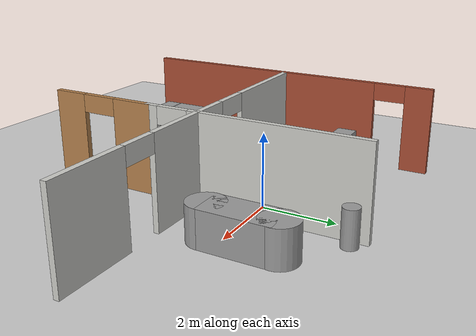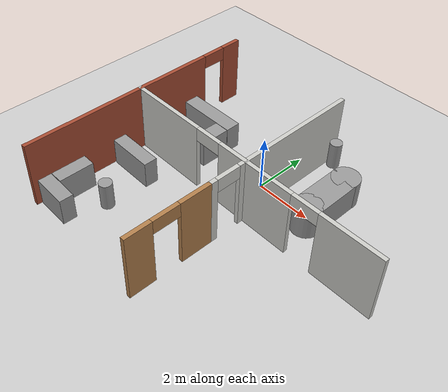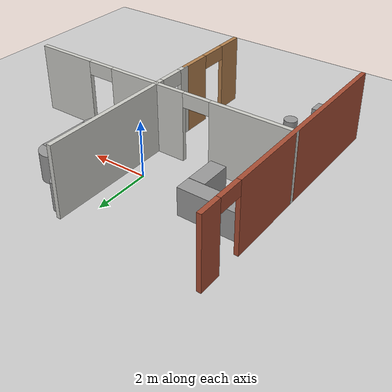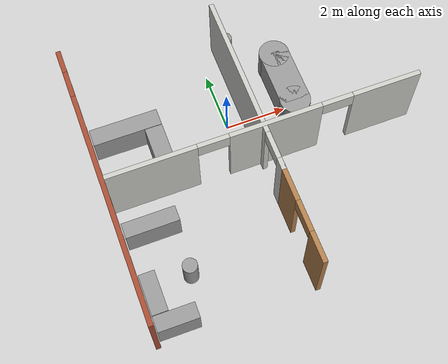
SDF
<sdf version="1.6">
 <world name="default">
  <model name="ground_plane">
   <static>1</static>
   <link name="link">
    <collision name="collision">
     <geometry><plane><normal>0 0 1</normal><size>100 100</size></plane></geometry>
     <surface><friction><ode><mu>100</mu><mu2>50</mu2></ode></friction></surface>
    </collision>
    <visual name="visual">
     <cast_shadows>0</cast_shadows>
     <geometry><plane><normal>0 0 1</normal><size>100 100</size></plane></geometry>
     <material>
      <script><uri>file://media/materials/scripts/gazebo.material</uri><name>Gazebo/Grey</name></script>
     </material>
    </visual>
   </link>
  </model>
  <model name="building">
   <link name="Wall_17">
    <pose>-2.5 -3 0 0 0 -1.5708</pose>
    <visual name="Wall_17_Visual_0">
     <pose>-0.986122 0 1.25 0 -0 0</pose>
     <geometry><box><size>1.17776 0.15 2.5</size></box></geometry>
     <material>
      <script><uri>file://media/materials/scripts/gazebo.material</uri><name>Gazebo/Wood</name></script>
      <ambient>0.435294 0.796078 0.67451 1</ambient>
      <shader type="pixel"/>
      <diffuse>1 1 1 1</diffuse>
      <specular>0.2 0.2 0.2 1</specular>
      <emissive>0 0 0 1</emissive>
     </material>
     <meta><layer>0</layer></meta>
    </visual>
    <visual name="Wall_17_Visual_2">
     <pose>0.102756 0 2.25 0 -0 0</pose>
     <geometry><box><size>1 0.15 0.5</size></box></geometry>
     <material>
      <script><uri>file://media/materials/scripts/gazebo.material</uri><name>Gazebo/Wood</name></script>
      <ambient>0.435294 0.796078 0.67451 1</ambient>
      <shader type="pixel"/>
      <diffuse>1 1 1 1</diffuse>
      <specular>0.2 0.2 0.2 1</specular>
      <emissive>0 0 0 1</emissive>
     </material>
     <meta><layer>0</layer></meta>
    </visual>
    <visual name="Wall_17_Visual_1">
     <pose>1.08888 0 1.25 0 -0 0</pose>
     <geometry><box><size>0.972244 0.15 2.5</size></box></geometry>
     <material>
      <script><uri>file://media/materials/scripts/gazebo.material</uri><name>Gazebo/Wood</name></script>
      <ambient>0.435294 0.796078 0.67451 1</ambient>
      <shader type="pixel"/>
      <diffuse>1 1 1 1</diffuse>
      <specular>0.2 0.2 0.2 1</specular>
      <emissive>0 0 0 1</emissive>
     </material>
     <meta><layer>0</layer></meta>
    </visual>
    <collision name="Wall_17_Collision_2">
     <pose>0.102756 0 2.25 0 -0 0</pose>
     <geometry><box><size>1 0.15 0.5</size></box></geometry>
     <surface>
      <friction>
       <ode><mu>1</mu><mu2>1</mu2><fdir1>0 0 0</fdir1><slip1>0</slip1><slip2>0</slip2></ode>
       <torsional>
        <coefficient>1</coefficient>
        <patch_radius>0</patch_radius>
        <surface_radius>0</surface_radius>
        <use_patch_radius>1</use_patch_radius>
        <ode><slip>0</slip></ode>
       </torsional>
      </friction>
      <bounce><restitution_coefficient>0</restitution_coefficient><threshold>1e+06</threshold></bounce>
      <contact>
       <collide_without_contact>0</collide_without_contact>
       <collide_without_contact_bitmask>1</collide_without_contact_bitmask>
       <collide_bitmask>1</collide_bitmask>
       <ode>
        <soft_cfm>0</soft_cfm>
        <soft_erp>0.2</soft_erp>
        <kp>1e+13</kp>
        <kd>1</kd>
        <max_vel>0.01</max_vel>
        <min_depth>0</min_depth>
       </ode>
       <bullet>
        <split_impulse>1</split_impulse>
        <split_impulse_penetration_threshold>-0.01</split_impulse_penetration_threshold>
        <soft_cfm>0</soft_cfm>
        <soft_erp>0.2</soft_erp>
        <kp>1e+13</kp>
        <kd>1</kd>
       </bullet>
      </contact>
     </surface>
    </collision>
    <collision name="Wall_17_Collision_0">
     <pose>-0.986122 0 1.25 0 -0 0</pose>
     <geometry><box><size>1.17776 0.15 2.5</size></box></geometry>
     <surface>
      <friction>
       <ode><mu>1</mu><mu2>1</mu2><fdir1>0 0 0</fdir1><slip1>0</slip1><slip2>0</slip2></ode>
       <torsional>
        <coefficient>1</coefficient>
        <patch_radius>0</patch_radius>
        <surface_radius>0</surface_radius>
        <use_patch_radius>1</use_patch_radius>
        <ode><slip>0</slip></ode>
       </torsional>
      </friction>
      <bounce><restitution_coefficient>0</restitution_coefficient><threshold>1e+06</threshold></bounce>
      <contact>
       <collide_without_contact>0</collide_without_contact>
       <collide_without_contact_bitmask>1</collide_without_contact_bitmask>
       <collide_bitmask>1</collide_bitmask>
       <ode>
        <soft_cfm>0</soft_cfm>
        <soft_erp>0.2</soft_erp>
        <kp>1e+13</kp>
        <kd>1</kd>
        <max_vel>0.01</max_vel>
        <min_depth>0</min_depth>
       </ode>
       <bullet>
        <split_impulse>1</split_impulse>
        <split_impulse_penetration_threshold>-0.01</split_impulse_penetration_threshold>
        <soft_cfm>0</soft_cfm>
        <soft_erp>0.2</soft_erp>
        <kp>1e+13</kp>
        <kd>1</kd>
       </bullet>
      </contact>
     </surface>
    </collision>
    <collision name="Wall_17_Collision_1">
     <pose>1.08888 0 1.25 0 -0 0</pose>
     <geometry><box><size>0.972244 0.15 2.5</size></box></geometry>
     <surface>
      <friction>
       <ode><mu>1</mu><mu2>1</mu2><fdir1>0 0 0</fdir1><slip1>0</slip1><slip2>0</slip2></ode>
       <torsional>
        <coefficient>1</coefficient>
        <patch_radius>0</patch_radius>
        <surface_radius>0</surface_radius>
        <use_patch_radius>1</use_patch_radius>
        <ode><slip>0</slip></ode>
       </torsional>
      </friction>
      <bounce><restitution_coefficient>0</restitution_coefficient><threshold>1e+06</threshold></bounce>
      <contact>
       <collide_without_contact>0</collide_without_contact>
       <collide_without_contact_bitmask>1</collide_without_contact_bitmask>
       <collide_bitmask>1</collide_bitmask>
       <ode>
        <soft_cfm>0</soft_cfm>
        <soft_erp>0.2</soft_erp>
        <kp>1e+13</kp>
        <kd>1</kd>
        <max_vel>0.01</max_vel>
        <min_depth>0</min_depth>
       </ode>
       <bullet>
        <split_impulse>1</split_impulse>
        <split_impulse_penetration_threshold>-0.01</split_impulse_penetration_threshold>
        <soft_cfm>0</soft_cfm>
        <soft_erp>0.2</soft_erp>
        <kp>1e+13</kp>
        <kd>1</kd>
       </bullet>
      </contact>
     </surface>
    </collision>
   </link>
   <link name="Wall_19">
    <pose>-2.5 0 0 0 -0 0</pose>
    <visual name="Wall_19_Visual_1">
     <pose>0.383063 0 1.25 0 -0 0</pose>
     <geometry><box><size>2.95551 0.15 2.5</size></box></geometry>
     <material>
      <script><uri>file://media/materials/scripts/gazebo.material</uri><name>Gazebo/CeilingTiled</name></script>
      <ambient>1 0.764706 0.305882 1</ambient>
      <shader type="pixel"/>
      <diffuse>1 1 1 1</diffuse>
      <specular>0 0 0 1</specular>
      <emissive>0 0 0 1</emissive>
     </material>
     <meta><layer>0</layer></meta>
    </visual>
    <visual name="Wall_19_Visual_2">
     <pose>3.96791 0 1.25 0 -0 0</pose>
     <geometry><box><size>2.21418 0.15 2.5</size></box></geometry>
     <material>
      <script><uri>file://media/materials/scripts/gazebo.material</uri><name>Gazebo/CeilingTiled</name></script>
      <ambient>1 0.764706 0.305882 1</ambient>
      <shader type="pixel"/>
      <diffuse>1 1 1 1</diffuse>
      <specular>0 0 0 1</specular>
      <emissive>0 0 0 1</emissive>
     </material>
     <meta><layer>0</layer></meta>
    </visual>
    <visual name="Wall_19_Visual_0">
     <pose>-3.58485 0 1.25 0 -0 0</pose>
     <geometry><box><size>2.98031 0.15 2.5</size></box></geometry>
     <material>
      <script><uri>file://media/materials/scripts/gazebo.material</uri><name>Gazebo/CeilingTiled</name></script>
      <ambient>1 0.764706 0.305882 1</ambient>
      <shader type="pixel"/>
      <diffuse>1 1 1 1</diffuse>
      <specular>0 0 0 1</specular>
      <emissive>0 0 0 1</emissive>
     </material>
     <meta><layer>0</layer></meta>
    </visual>
    <visual name="Wall_19_Visual_4">
     <pose>2.36082 0 2.25 0 -0 0</pose>
     <geometry><box><size>1 0.15 0.5</size></box></geometry>
     <material>
      <script><uri>file://media/materials/scripts/gazebo.material</uri><name>Gazebo/CeilingTiled</name></script>
      <ambient>1 0.764706 0.305882 1</ambient>
      <shader type="pixel"/>
      <diffuse>1 1 1 1</diffuse>
      <specular>0 0 0 1</specular>
      <emissive>0 0 0 1</emissive>
     </material>
     <meta><layer>0</layer></meta>
    </visual>
    <visual name="Wall_19_Visual_3">
     <pose>-1.59469 0 2.25 0 -0 0</pose>
     <geometry><box><size>1 0.15 0.5</size></box></geometry>
     <material>
      <script><uri>file://media/materials/scripts/gazebo.material</uri><name>Gazebo/CeilingTiled</name></script>
      <ambient>1 0.764706 0.305882 1</ambient>
      <shader type="pixel"/>
      <diffuse>1 1 1 1</diffuse>
      <specular>0 0 0 1</specular>
      <emissive>0 0 0 1</emissive>
     </material>
     <meta><layer>0</layer></meta>
    </visual>
    <collision name="Wall_19_Collision_0">
     <pose>-3.58485 0 1.25 0 -0 0</pose>
     <geometry><box><size>2.98031 0.15 2.5</size></box></geometry>
     <surface>
      <friction>
       <ode><mu>1</mu><mu2>1</mu2><fdir1>0 0 0</fdir1><slip1>0</slip1><slip2>0</slip2></ode>
       <torsional>
        <coefficient>1</coefficient>
        <patch_radius>0</patch_radius>
        <surface_radius>0</surface_radius>
        <use_patch_radius>1</use_patch_radius>
        <ode><slip>0</slip></ode>
       </torsional>
      </friction>
      <bounce><restitution_coefficient>0</restitution_coefficient><threshold>1e+06</threshold></bounce>
      <contact>
       <collide_without_contact>0</collide_without_contact>
       <collide_without_contact_bitmask>1</collide_without_contact_bitmask>
       <collide_bitmask>1</collide_bitmask>
       <ode>
        <soft_cfm>0</soft_cfm>
        <soft_erp>0.2</soft_erp>
        <kp>1e+13</kp>
        <kd>1</kd>
        <max_vel>0.01</max_vel>
        <min_depth>0</min_depth>
       </ode>
       <bullet>
        <split_impulse>1</split_impulse>
        <split_impulse_penetration_threshold>-0.01</split_impulse_penetration_threshold>
        <soft_cfm>0</soft_cfm>
        <soft_erp>0.2</soft_erp>
        <kp>1e+13</kp>
        <kd>1</kd>
       </bullet>
      </contact>
     </surface>
    </collision>
    <collision name="Wall_19_Collision_2">
     <pose>3.96791 0 1.25 0 -0 0</pose>
     <geometry><box><size>2.21418 0.15 2.5</size></box></geometry>
     <surface>
      <friction>
       <ode><mu>1</mu><mu2>1</mu2><fdir1>0 0 0</fdir1><slip1>0</slip1><slip2>0</slip2></ode>
       <torsional>
        <coefficient>1</coefficient>
        <patch_radius>0</patch_radius>
        <surface_radius>0</surface_radius>
        <use_patch_radius>1</use_patch_radius>
        <ode><slip>0</slip></ode>
       </torsional>
      </friction>
      <bounce><restitution_coefficient>0</restitution_coefficient><threshold>1e+06</threshold></bounce>
      <contact>
       <collide_without_contact>0</collide_without_contact>
       <collide_without_contact_bitmask>1</collide_without_contact_bitmask>
       <collide_bitmask>1</collide_bitmask>
       <ode>
        <soft_cfm>0</soft_cfm>
        <soft_erp>0.2</soft_erp>
        <kp>1e+13</kp>
        <kd>1</kd>
        <max_vel>0.01</max_vel>
        <min_depth>0</min_depth>
       </ode>
       <bullet>
        <split_impulse>1</split_impulse>
        <split_impulse_penetration_threshold>-0.01</split_impulse_penetration_threshold>
        <soft_cfm>0</soft_cfm>
        <soft_erp>0.2</soft_erp>
        <kp>1e+13</kp>
        <kd>1</kd>
       </bullet>
      </contact>
     </surface>
    </collision>
    <collision name="Wall_19_Collision_1">
     <pose>0.383063 0 1.25 0 -0 0</pose>
     <geometry><box><size>2.95551 0.15 2.5</size></box></geometry>
     <surface>
      <friction>
       <ode><mu>1</mu><mu2>1</mu2><fdir1>0 0 0</fdir1><slip1>0</slip1><slip2>0</slip2></ode>
       <torsional>
        <coefficient>1</coefficient>
        <patch_radius>0</patch_radius>
        <surface_radius>0</surface_radius>
        <use_patch_radius>1</use_patch_radius>
        <ode><slip>0</slip></ode>
       </torsional>
      </friction>
      <bounce><restitution_coefficient>0</restitution_coefficient><threshold>1e+06</threshold></bounce>
      <contact>
       <collide_without_contact>0</collide_without_contact>
       <collide_without_contact_bitmask>1</collide_without_contact_bitmask>
       <collide_bitmask>1</collide_bitmask>
       <ode>
        <soft_cfm>0</soft_cfm>
        <soft_erp>0.2</soft_erp>
        <kp>1e+13</kp>
        <kd>1</kd>
        <max_vel>0.01</max_vel>
        <min_depth>0</min_depth>
       </ode>
       <bullet>
        <split_impulse>1</split_impulse>
        <split_impulse_penetration_threshold>-0.01</split_impulse_penetration_threshold>
        <soft_cfm>0</soft_cfm>
        <soft_erp>0.2</soft_erp>
        <kp>1e+13</kp>
        <kd>1</kd>
       </bullet>
      </contact>
     </surface>
    </collision>
    <collision name="Wall_19_Collision_3">
     <pose>-1.59469 0 2.25 0 -0 0</pose>
     <geometry><box><size>1 0.15 0.5</size></box></geometry>
     <surface>
      <friction>
       <ode><mu>1</mu><mu2>1</mu2><fdir1>0 0 0</fdir1><slip1>0</slip1><slip2>0</slip2></ode>
       <torsional>
        <coefficient>1</coefficient>
        <patch_radius>0</patch_radius>
        <surface_radius>0</surface_radius>
        <use_patch_radius>1</use_patch_radius>
        <ode><slip>0</slip></ode>
       </torsional>
      </friction>
      <bounce><restitution_coefficient>0</restitution_coefficient><threshold>1e+06</threshold></bounce>
      <contact>
       <collide_without_contact>0</collide_without_contact>
       <collide_without_contact_bitmask>1</collide_without_contact_bitmask>
       <collide_bitmask>1</collide_bitmask>
       <ode>
        <soft_cfm>0</soft_cfm>
        <soft_erp>0.2</soft_erp>
        <kp>1e+13</kp>
        <kd>1</kd>
        <max_vel>0.01</max_vel>
        <min_depth>0</min_depth>
       </ode>
       <bullet>
        <split_impulse>1</split_impulse>
        <split_impulse_penetration_threshold>-0.01</split_impulse_penetration_threshold>
        <soft_cfm>0</soft_cfm>
        <soft_erp>0.2</soft_erp>
        <kp>1e+13</kp>
        <kd>1</kd>
       </bullet>
      </contact>
     </surface>
    </collision>
    <collision name="Wall_19_Collision_4">
     <pose>2.36082 0 2.25 0 -0 0</pose>
     <geometry><box><size>1 0.15 0.5</size></box></geometry>
     <surface>
      <friction>
       <ode><mu>1</mu><mu2>1</mu2><fdir1>0 0 0</fdir1><slip1>0</slip1><slip2>0</slip2></ode>
       <torsional>
        <coefficient>1</coefficient>
        <patch_radius>0</patch_radius>
        <surface_radius>0</surface_radius>
        <use_patch_radius>1</use_patch_radius>
        <ode><slip>0</slip></ode>
       </torsional>
      </friction>
      <bounce><restitution_coefficient>0</restitution_coefficient><threshold>1e+06</threshold></bounce>
      <contact>
       <collide_without_contact>0</collide_without_contact>
       <collide_without_contact_bitmask>1</collide_without_contact_bitmask>
       <collide_bitmask>1</collide_bitmask>
       <ode>
        <soft_cfm>0</soft_cfm>
        <soft_erp>0.2</soft_erp>
        <kp>1e+13</kp>
        <kd>1</kd>
        <max_vel>0.01</max_vel>
        <min_depth>0</min_depth>
       </ode>
       <bullet>
        <split_impulse>1</split_impulse>
        <split_impulse_penetration_threshold>-0.01</split_impulse_penetration_threshold>
        <soft_cfm>0</soft_cfm>
        <soft_erp>0.2</soft_erp>
        <kp>1e+13</kp>
        <kd>1</kd>
       </bullet>
      </contact>
     </surface>
    </collision>
   </link>
   <link name="Wall_22">
    <pose>-2.5 2.25 0 0 -0 1.5708</pose>
    <visual name="Wall_22_Visual">
     <pose>0 0 1.25 0 -0 0</pose>
     <geometry><box><size>4.65 0.15 2.5</size></box></geometry>
     <material>
      <script><uri>file://media/materials/scripts/gazebo.material</uri><name>Gazebo/CeilingTiled</name></script>
      <ambient>1 0.764706 0.305882 1</ambient>
      <shader type="pixel"/>
      <diffuse>1 1 1 1</diffuse>
      <specular>0 0 0 1</specular>
      <emissive>0 0 0 1</emissive>
     </material>
     <meta><layer>0</layer></meta>
    </visual>
    <collision name="Wall_22_Collision">
     <pose>0 0 1.25 0 -0 0</pose>
     <geometry><box><size>4.65 0.15 2.5</size></box></geometry>
     <surface>
      <friction>
       <ode><mu>1</mu><mu2>1</mu2><fdir1>0 0 0</fdir1><slip1>0</slip1><slip2>0</slip2></ode>
       <torsional>
        <coefficient>1</coefficient>
        <patch_radius>0</patch_radius>
        <surface_radius>0</surface_radius>
        <use_patch_radius>1</use_patch_radius>
        <ode><slip>0</slip></ode>
       </torsional>
      </friction>
      <bounce><restitution_coefficient>0</restitution_coefficient><threshold>1e+06</threshold></bounce>
      <contact>
       <collide_without_contact>0</collide_without_contact>
       <collide_without_contact_bitmask>1</collide_without_contact_bitmask>
       <collide_bitmask>1</collide_bitmask>
       <ode>
        <soft_cfm>0</soft_cfm>
        <soft_erp>0.2</soft_erp>
        <kp>1e+13</kp>
        <kd>1</kd>
        <max_vel>0.01</max_vel>
        <min_depth>0</min_depth>
       </ode>
       <bullet>
        <split_impulse>1</split_impulse>
        <split_impulse_penetration_threshold>-0.01</split_impulse_penetration_threshold>
        <soft_cfm>0</soft_cfm>
        <soft_erp>0.2</soft_erp>
        <kp>1e+13</kp>
        <kd>1</kd>
       </bullet>
      </contact>
     </surface>
    </collision>
   </link>
   <link name="Wall_28">
    <pose>-2.5 -0.75 0 0 0 -1.5708</pose>
    <visual name="Wall_28_Visual_1">
     <pose>0.628859 0 1.25 0 -0 0</pose>
     <geometry><box><size>0.392282 0.15 2.5</size></box></geometry>
     <material>
      <script><uri>file://media/materials/scripts/gazebo.material</uri><name>Gazebo/CeilingTiled</name></script>
      <ambient>1 0.764706 0.305882 1</ambient>
      <shader type="pixel"/>
      <diffuse>1 1 1 1</diffuse>
      <specular>0 0 0 1</specular>
      <emissive>0 0 0 1</emissive>
     </material>
     <meta><layer>0</layer></meta>
    </visual>
    <visual name="Wall_28_Visual_2">
     <pose>-0.017282 0 2.25 0 -0 0</pose>
     <geometry><box><size>0.9 0.15 0.5</size></box></geometry>
     <material>
      <script><uri>file://media/materials/scripts/gazebo.material</uri><name>Gazebo/CeilingTiled</name></script>
      <ambient>1 0.764706 0.305882 1</ambient>
      <shader type="pixel"/>
      <diffuse>1 1 1 1</diffuse>
      <specular>0 0 0 1</specular>
      <emissive>0 0 0 1</emissive>
     </material>
     <meta><layer>0</layer></meta>
    </visual>
    <visual name="Wall_28_Visual_0">
     <pose>-0.646141 0 1.25 0 -0 0</pose>
     <geometry><box><size>0.357718 0.15 2.5</size></box></geometry>
     <material>
      <script><uri>file://media/materials/scripts/gazebo.material</uri><name>Gazebo/CeilingTiled</name></script>
      <ambient>1 0.764706 0.305882 1</ambient>
      <shader type="pixel"/>
      <diffuse>1 1 1 1</diffuse>
      <specular>0 0 0 1</specular>
      <emissive>0 0 0 1</emissive>
     </material>
     <meta><layer>0</layer></meta>
    </visual>
    <collision name="Wall_28_Collision_0">
     <pose>-0.646141 0 1.25 0 -0 0</pose>
     <geometry><box><size>0.357718 0.15 2.5</size></box></geometry>
     <surface>
      <friction>
       <ode><mu>1</mu><mu2>1</mu2><fdir1>0 0 0</fdir1><slip1>0</slip1><slip2>0</slip2></ode>
       <torsional>
        <coefficient>1</coefficient>
        <patch_radius>0</patch_radius>
        <surface_radius>0</surface_radius>
        <use_patch_radius>1</use_patch_radius>
        <ode><slip>0</slip></ode>
       </torsional>
      </friction>
      <bounce><restitution_coefficient>0</restitution_coefficient><threshold>1e+06</threshold></bounce>
      <contact>
       <collide_without_contact>0</collide_without_contact>
       <collide_without_contact_bitmask>1</collide_without_contact_bitmask>
       <collide_bitmask>1</collide_bitmask>
       <ode>
        <soft_cfm>0</soft_cfm>
        <soft_erp>0.2</soft_erp>
        <kp>1e+13</kp>
        <kd>1</kd>
        <max_vel>0.01</max_vel>
        <min_depth>0</min_depth>
       </ode>
       <bullet>
        <split_impulse>1</split_impulse>
        <split_impulse_penetration_threshold>-0.01</split_impulse_penetration_threshold>
        <soft_cfm>0</soft_cfm>
        <soft_erp>0.2</soft_erp>
        <kp>1e+13</kp>
        <kd>1</kd>
       </bullet>
      </contact>
     </surface>
    </collision>
    <collision name="Wall_28_Collision_2">
     <pose>-0.017282 0 2.25 0 -0 0</pose>
     <geometry><box><size>0.9 0.15 0.5</size></box></geometry>
     <surface>
      <friction>
       <ode><mu>1</mu><mu2>1</mu2><fdir1>0 0 0</fdir1><slip1>0</slip1><slip2>0</slip2></ode>
       <torsional>
        <coefficient>1</coefficient>
        <patch_radius>0</patch_radius>
        <surface_radius>0</surface_radius>
        <use_patch_radius>1</use_patch_radius>
        <ode><slip>0</slip></ode>
       </torsional>
      </friction>
      <bounce><restitution_coefficient>0</restitution_coefficient><threshold>1e+06</threshold></bounce>
      <contact>
       <collide_without_contact>0</collide_without_contact>
       <collide_without_contact_bitmask>1</collide_without_contact_bitmask>
       <collide_bitmask>1</collide_bitmask>
       <ode>
        <soft_cfm>0</soft_cfm>
        <soft_erp>0.2</soft_erp>
        <kp>1e+13</kp>
        <kd>1</kd>
        <max_vel>0.01</max_vel>
        <min_depth>0</min_depth>
       </ode>
       <bullet>
        <split_impulse>1</split_impulse>
        <split_impulse_penetration_threshold>-0.01</split_impulse_penetration_threshold>
        <soft_cfm>0</soft_cfm>
        <soft_erp>0.2</soft_erp>
        <kp>1e+13</kp>
        <kd>1</kd>
       </bullet>
      </contact>
     </surface>
    </collision>
    <collision name="Wall_28_Collision_1">
     <pose>0.628859 0 1.25 0 -0 0</pose>
     <geometry><box><size>0.392282 0.15 2.5</size></box></geometry>
     <surface>
      <friction>
       <ode><mu>1</mu><mu2>1</mu2><fdir1>0 0 0</fdir1><slip1>0</slip1><slip2>0</slip2></ode>
       <torsional>
        <coefficient>1</coefficient>
        <patch_radius>0</patch_radius>
        <surface_radius>0</surface_radius>
        <use_patch_radius>1</use_patch_radius>
        <ode><slip>0</slip></ode>
       </torsional>
      </friction>
      <bounce><restitution_coefficient>0</restitution_coefficient><threshold>1e+06</threshold></bounce>
      <contact>
       <collide_without_contact>0</collide_without_contact>
       <collide_without_contact_bitmask>1</collide_without_contact_bitmask>
       <collide_bitmask>1</collide_bitmask>
       <ode>
        <soft_cfm>0</soft_cfm>
        <soft_erp>0.2</soft_erp>
        <kp>1e+13</kp>
        <kd>1</kd>
        <max_vel>0.01</max_vel>
        <min_depth>0</min_depth>
       </ode>
       <bullet>
        <split_impulse>1</split_impulse>
        <split_impulse_penetration_threshold>-0.01</split_impulse_penetration_threshold>
        <soft_cfm>0</soft_cfm>
        <soft_erp>0.2</soft_erp>
        <kp>1e+13</kp>
        <kd>1</kd>
       </bullet>
      </contact>
     </surface>
    </collision>
   </link>
   <link name="Wall_6">
    <pose>-7.5 0 0 0 0 -1.5708</pose>
    <visual name="Wall_6_Visual_0">
     <pose>-4.1811 0 1.25 0 -0 0</pose>
     <geometry><box><size>0.787791 0.15 2.5</size></box></geometry>
     <material>
      <script><uri>file://media/materials/scripts/gazebo.material</uri><name>Gazebo/Bricks</name></script>
      <ambient>0.996078 0.47451 0.0196078 1</ambient>
      <shader type="pixel"/>
      <diffuse>1 1 1 1</diffuse>
      <specular>0.2 0.2 0.2 1</specular>
      <emissive>0 0 0 1</emissive>
     </material>
     <meta><layer>0</layer></meta>
    </visual>
    <visual name="Wall_6_Visual_2">
     <pose>-3.33721 0 2.25 0 -0 0</pose>
     <geometry><box><size>0.9 0.15 0.5</size></box></geometry>
     <material>
      <script><uri>file://media/materials/scripts/gazebo.material</uri><name>Gazebo/Bricks</name></script>
      <ambient>0.996078 0.47451 0.0196078 1</ambient>
      <shader type="pixel"/>
      <diffuse>1 1 1 1</diffuse>
      <specular>0.2 0.2 0.2 1</specular>
      <emissive>0 0 0 1</emissive>
     </material>
     <meta><layer>0</layer></meta>
    </visual>
    <visual name="Wall_6_Visual_1">
     <pose>0.843896 0 1.25 0 -0 0</pose>
     <geometry><box><size>7.46221 0.15 2.5</size></box></geometry>
     <material>
      <script><uri>file://media/materials/scripts/gazebo.material</uri><name>Gazebo/Bricks</name></script>
      <ambient>0.996078 0.47451 0.0196078 1</ambient>
      <shader type="pixel"/>
      <diffuse>1 1 1 1</diffuse>
      <specular>0.2 0.2 0.2 1</specular>
      <emissive>0 0 0 1</emissive>
     </material>
     <meta><layer>0</layer></meta>
    </visual>
    <collision name="Wall_6_Collision_0">
     <pose>-4.1811 0 1.25 0 -0 0</pose>
     <geometry><box><size>0.787791 0.15 2.5</size></box></geometry>
     <surface>
      <friction>
       <ode><mu>1</mu><mu2>1</mu2><fdir1>0 0 0</fdir1><slip1>0</slip1><slip2>0</slip2></ode>
       <torsional>
        <coefficient>1</coefficient>
        <patch_radius>0</patch_radius>
        <surface_radius>0</surface_radius>
        <use_patch_radius>1</use_patch_radius>
        <ode><slip>0</slip></ode>
       </torsional>
      </friction>
      <bounce><restitution_coefficient>0</restitution_coefficient><threshold>1e+06</threshold></bounce>
      <contact>
       <collide_without_contact>0</collide_without_contact>
       <collide_without_contact_bitmask>1</collide_without_contact_bitmask>
       <collide_bitmask>1</collide_bitmask>
       <ode>
        <soft_cfm>0</soft_cfm>
        <soft_erp>0.2</soft_erp>
        <kp>1e+13</kp>
        <kd>1</kd>
        <max_vel>0.01</max_vel>
        <min_depth>0</min_depth>
       </ode>
       <bullet>
        <split_impulse>1</split_impulse>
        <split_impulse_penetration_threshold>-0.01</split_impulse_penetration_threshold>
        <soft_cfm>0</soft_cfm>
        <soft_erp>0.2</soft_erp>
        <kp>1e+13</kp>
        <kd>1</kd>
       </bullet>
      </contact>
     </surface>
    </collision>
    <collision name="Wall_6_Collision_1">
     <pose>0.843896 0 1.25 0 -0 0</pose>
     <geometry><box><size>7.46221 0.15 2.5</size></box></geometry>
     <surface>
      <friction>
       <ode><mu>1</mu><mu2>1</mu2><fdir1>0 0 0</fdir1><slip1>0</slip1><slip2>0</slip2></ode>
       <torsional>
        <coefficient>1</coefficient>
        <patch_radius>0</patch_radius>
        <surface_radius>0</surface_radius>
        <use_patch_radius>1</use_patch_radius>
        <ode><slip>0</slip></ode>
       </torsional>
      </friction>
      <bounce><restitution_coefficient>0</restitution_coefficient><threshold>1e+06</threshold></bounce>
      <contact>
       <collide_without_contact>0</collide_without_contact>
       <collide_without_contact_bitmask>1</collide_without_contact_bitmask>
       <collide_bitmask>1</collide_bitmask>
       <ode>
        <soft_cfm>0</soft_cfm>
        <soft_erp>0.2</soft_erp>
        <kp>1e+13</kp>
        <kd>1</kd>
        <max_vel>0.01</max_vel>
        <min_depth>0</min_depth>
       </ode>
       <bullet>
        <split_impulse>1</split_impulse>
        <split_impulse_penetration_threshold>-0.01</split_impulse_penetration_threshold>
        <soft_cfm>0</soft_cfm>
        <soft_erp>0.2</soft_erp>
        <kp>1e+13</kp>
        <kd>1</kd>
       </bullet>
      </contact>
     </surface>
    </collision>
    <collision name="Wall_6_Collision_2">
     <pose>-3.33721 0 2.25 0 -0 0</pose>
     <geometry><box><size>0.9 0.15 0.5</size></box></geometry>
     <surface>
      <friction>
       <ode><mu>1</mu><mu2>1</mu2><fdir1>0 0 0</fdir1><slip1>0</slip1><slip2>0</slip2></ode>
       <torsional>
        <coefficient>1</coefficient>
        <patch_radius>0</patch_radius>
        <surface_radius>0</surface_radius>
        <use_patch_radius>1</use_patch_radius>
        <ode><slip>0</slip></ode>
       </torsional>
      </friction>
      <bounce><restitution_coefficient>0</restitution_coefficient><threshold>1e+06</threshold></bounce>
      <contact>
       <collide_without_contact>0</collide_without_contact>
       <collide_without_contact_bitmask>1</collide_without_contact_bitmask>
       <collide_bitmask>1</collide_bitmask>
       <ode>
        <soft_cfm>0</soft_cfm>
        <soft_erp>0.2</soft_erp>
        <kp>1e+13</kp>
        <kd>1</kd>
        <max_vel>0.01</max_vel>
        <min_depth>0</min_depth>
       </ode>
       <bullet>
        <split_impulse>1</split_impulse>
        <split_impulse_penetration_threshold>-0.01</split_impulse_penetration_threshold>
        <soft_cfm>0</soft_cfm>
        <soft_erp>0.2</soft_erp>
        <kp>1e+13</kp>
        <kd>1</kd>
       </bullet>
      </contact>
     </surface>
    </collision>
   </link>
   <static>1</static>
   <pose>3.1187 -1.5263 0 0 -0 0</pose>
  </model>
  <model name="unit_box">
   <link name="link">
    <pose>-0.782407 -0.001887 0 0 -0 0</pose>
    <inertial>
     <mass>1.24814</mass>
     <inertia>
      <ixx>0.137103</ixx>
      <ixy>0</ixy>
      <ixz>0</ixz>
      <iyy>0.613366</iyy>
      <iyz>0</iyz>
      <izz>0.542445</izz>
     </inertia>
    </inertial>
    <visual name="visual">
     <geometry><box><size>2.21294 0.564047 1</size></box></geometry>
     <material>
      <script><name>Gazebo/Grey</name><uri>file://media/materials/scripts/gazebo.material</uri></script>
      <shader type="pixel"><normal_map>__default__</normal_map></shader>
      <ambient>0.3 0.3 0.3 1</ambient>
      <diffuse>0.7 0.7 0.7 1</diffuse>
      <specular>0.01 0.01 0.01 1</specular>
      <emissive>0 0 0 1</emissive>
     </material>
    </visual>
    <collision name="collision">
     <geometry><box><size>2.21294 0.564047 1</size></box></geometry>
     <surface>
      <friction>
       <ode><mu>1</mu><mu2>1</mu2><fdir1>0 0 0</fdir1><slip1>0</slip1><slip2>0</slip2></ode>
       <torsional>
        <coefficient>1</coefficient>
        <patch_radius>0</patch_radius>
        <surface_radius>0</surface_radius>
        <use_patch_radius>1</use_patch_radius>
        <ode><slip>0</slip></ode>
       </torsional>
      </friction>
      <bounce><restitution_coefficient>0</restitution_coefficient><threshold>1e+06</threshold></bounce>
      <contact>
       <collide_without_contact>0</collide_without_contact>
       <collide_without_contact_bitmask>1</collide_without_contact_bitmask>
       <collide_bitmask>1</collide_bitmask>
       <ode>
        <soft_cfm>0</soft_cfm>
        <soft_erp>0.2</soft_erp>
        <kp>1e+13</kp>
        <kd>1</kd>
        <max_vel>0.01</max_vel>
        <min_depth>0</min_depth>
       </ode>
       <bullet>
        <split_impulse>1</split_impulse>
        <split_impulse_penetration_threshold>-0.01</split_impulse_penetration_threshold>
        <soft_cfm>0</soft_cfm>
        <soft_erp>0.2</soft_erp>
        <kp>1e+13</kp>
        <kd>1</kd>
       </bullet>
      </contact>
     </surface>
    </collision>
   </link>
   <link name="link_clone">
    <pose>0.042396 -0.845064 0 -0 -0 -1.57291</pose>
    <inertial>
     <mass>0.620394</mass>
     <inertia>
      <ixx>0.0681477</ixx>
      <ixy>0</ixy>
      <ixz>0</ixz>
      <iyy>0.114251</iyy>
      <iyz>0</iyz>
      <izz>0.0790001</izz>
     </inertia>
    </inertial>
    <visual name="visual">
     <geometry><box><size>1.09996 0.564047 1</size></box></geometry>
     <material>
      <script><name>Gazebo/Grey</name><uri>file://media/materials/scripts/gazebo.material</uri></script>
      <shader type="pixel"><normal_map>__default__</normal_map></shader>
      <ambient>0.3 0.3 0.3 1</ambient>
      <diffuse>0.7 0.7 0.7 1</diffuse>
      <specular>0.01 0.01 0.01 1</specular>
      <emissive>0 0 0 1</emissive>
     </material>
    </visual>
    <collision name="collision">
     <geometry><box><size>1.09996 0.564047 1</size></box></geometry>
     <surface>
      <friction>
       <ode><mu>1</mu><mu2>1</mu2><fdir1>0 0 0</fdir1><slip1>0</slip1><slip2>0</slip2></ode>
       <torsional>
        <coefficient>1</coefficient>
        <patch_radius>0</patch_radius>
        <surface_radius>0</surface_radius>
        <use_patch_radius>1</use_patch_radius>
        <ode><slip>0</slip></ode>
       </torsional>
      </friction>
      <bounce><restitution_coefficient>0</restitution_coefficient><threshold>1e+06</threshold></bounce>
      <contact>
       <collide_without_contact>0</collide_without_contact>
       <collide_without_contact_bitmask>1</collide_without_contact_bitmask>
       <collide_bitmask>1</collide_bitmask>
       <ode>
        <soft_cfm>0</soft_cfm>
        <soft_erp>0.2</soft_erp>
        <kp>1e+13</kp>
        <kd>1</kd>
        <max_vel>0.01</max_vel>
        <min_depth>0</min_depth>
       </ode>
       <bullet>
        <split_impulse>1</split_impulse>
        <split_impulse_penetration_threshold>-0.01</split_impulse_penetration_threshold>
        <soft_cfm>0</soft_cfm>
        <soft_erp>0.2</soft_erp>
        <kp>1e+13</kp>
        <kd>1</kd>
       </bullet>
      </contact>
     </surface>
    </collision>
   </link>
   <static>0</static>
   <pose>-2.37706 0.637646 0.500001 -2e-06 0 0</pose>
  </model>
  <model name="unit_box_0">
   <link name="link">
    <pose>-0.554574 -0.313123 0 0 -0 0</pose>
    <inertial>
     <mass>0.845888</mass>
     <inertia>
      <ixx>0.0880409</ixx>
      <ixy>0</ixy>
      <ixz>0</ixz>
      <iyy>0.273073</iyy>
      <iyz>0</iyz>
      <izz>0.220132</izz>
     </inertia>
    </inertial>
    <visual name="visual">
     <geometry><box><size>1.69525 0.498971 1</size></box></geometry>
     <material>
      <script><name>Gazebo/Grey</name><uri>file://media/materials/scripts/gazebo.material</uri></script>
      <shader type="pixel"><normal_map>__default__</normal_map></shader>
      <ambient>0.3 0.3 0.3 1</ambient>
      <diffuse>0.7 0.7 0.7 1</diffuse>
      <specular>0.01 0.01 0.01 1</specular>
      <emissive>0 0 0 1</emissive>
     </material>
    </visual>
    <collision name="collision">
     <geometry><box><size>1.69525 0.498971 1</size></box></geometry>
     <surface>
      <friction>
       <ode><mu>1</mu><mu2>1</mu2><fdir1>0 0 0</fdir1><slip1>0</slip1><slip2>0</slip2></ode>
       <torsional>
        <coefficient>1</coefficient>
        <patch_radius>0</patch_radius>
        <surface_radius>0</surface_radius>
        <use_patch_radius>1</use_patch_radius>
        <ode><slip>0</slip></ode>
       </torsional>
      </friction>
      <bounce><restitution_coefficient>0</restitution_coefficient><threshold>1e+06</threshold></bounce>
      <contact>
       <collide_without_contact>0</collide_without_contact>
       <collide_without_contact_bitmask>1</collide_without_contact_bitmask>
       <collide_bitmask>1</collide_bitmask>
       <ode>
        <soft_cfm>0</soft_cfm>
        <soft_erp>0.2</soft_erp>
        <kp>1e+13</kp>
        <kd>1</kd>
        <max_vel>0.01</max_vel>
        <min_depth>0</min_depth>
       </ode>
       <bullet>
        <split_impulse>1</split_impulse>
        <split_impulse_penetration_threshold>-0.01</split_impulse_penetration_threshold>
        <soft_cfm>0</soft_cfm>
        <soft_erp>0.2</soft_erp>
        <kp>1e+13</kp>
        <kd>1</kd>
       </bullet>
      </contact>
     </surface>
    </collision>
   </link>
   <static>0</static>
   <pose>-2.86223 -2.35678 0.5 3e-06 -0 -3.8e-05</pose>
  </model>
  <model name="unit_box_1">
   <link name="link">
    <pose>-0.442546 0 0 0 -0 0</pose>
    <inertial>
     <mass>0.639519</mass>
     <inertia><ixx>0.141</ixx><ixy>0</ixy><ixz>0</ixz><iyy>0.0665381</iyy><iyz>0</iyz><izz>0.100952</izz></inertia>
    </inertial>
    <visual name="visual">
     <geometry><box><size>0.498526 1.28286 1</size></box></geometry>
     <material>
      <script><name>Gazebo/Grey</name><uri>file://media/materials/scripts/gazebo.material</uri></script>
      <shader type="pixel"/>
      <ambient>0.3 0.3 0.3 1</ambient>
      <diffuse>0.7 0.7 0.7 1</diffuse>
      <specular>0.01 0.01 0.01 1</specular>
      <emissive>0 0 0 1</emissive>
     </material>
    </visual>
    <collision name="collision">
     <geometry><box><size>0.498526 1.28286 1</size></box></geometry>
     <surface>
      <friction>
       <ode><mu>1</mu><mu2>1</mu2><fdir1>0 0 0</fdir1><slip1>0</slip1><slip2>0</slip2></ode>
       <torsional>
        <coefficient>1</coefficient>
        <patch_radius>0</patch_radius>
        <surface_radius>0</surface_radius>
        <use_patch_radius>1</use_patch_radius>
        <ode><slip>0</slip></ode>
       </torsional>
      </friction>
      <bounce><restitution_coefficient>0</restitution_coefficient><threshold>1e+06</threshold></bounce>
      <contact>
       <collide_without_contact>0</collide_without_contact>
       <collide_without_contact_bitmask>1</collide_without_contact_bitmask>
       <collide_bitmask>1</collide_bitmask>
       <ode>
        <soft_cfm>0</soft_cfm>
        <soft_erp>0.2</soft_erp>
        <kp>1e+13</kp>
        <kd>1</kd>
        <max_vel>0.01</max_vel>
        <min_depth>0</min_depth>
       </ode>
       <bullet>
        <split_impulse>1</split_impulse>
        <split_impulse_penetration_threshold>-0.01</split_impulse_penetration_threshold>
        <soft_cfm>0</soft_cfm>
        <soft_erp>0.2</soft_erp>
        <kp>1e+13</kp>
        <kd>1</kd>
       </bullet>
      </contact>
     </surface>
    </collision>
   </link>
   <link name="link_0">
    <pose>0.815859 0.399385 0 0 -0 0</pose>
    <inertial>
     <mass>0.219139</mass>
     <inertia>
      <ixx>0.021263</ixx>
      <ixy>0</ixy>
      <ixz>0</ixz>
      <iyy>0.021263</iyy>
      <iyz>0</iyz>
      <izz>0.00600279</izz>
     </inertia>
    </inertial>
    <visual name="visual">
     <geometry><cylinder><radius>0.234062</radius><length>1</length></cylinder></geometry>
     <material>
      <lighting>1</lighting>
      <script><uri>file://media/materials/scripts/gazebo.material</uri><name>Gazebo/Grey</name></script>
      <shader type="pixel"/>
      <ambient>0.3 0.3 0.3 1</ambient>
      <diffuse>0.7 0.7 0.7 1</diffuse>
      <specular>0.01 0.01 0.01 1</specular>
      <emissive>0 0 0 1</emissive>
     </material>
    </visual>
    <collision name="collision">
     <geometry><cylinder><radius>0.234062</radius><length>1</length></cylinder></geometry>
     <surface>
      <friction>
       <ode><mu>1</mu><mu2>1</mu2><fdir1>0 0 0</fdir1><slip1>0</slip1><slip2>0</slip2></ode>
       <torsional>
        <coefficient>1</coefficient>
        <patch_radius>0</patch_radius>
        <surface_radius>0</surface_radius>
        <use_patch_radius>1</use_patch_radius>
        <ode><slip>0</slip></ode>
       </torsional>
      </friction>
      <bounce><restitution_coefficient>0</restitution_coefficient><threshold>1e+06</threshold></bounce>
      <contact>
       <collide_without_contact>0</collide_without_contact>
       <collide_without_contact_bitmask>1</collide_without_contact_bitmask>
       <collide_bitmask>1</collide_bitmask>
       <ode>
        <soft_cfm>0</soft_cfm>
        <soft_erp>0.2</soft_erp>
        <kp>1e+13</kp>
        <kd>1</kd>
        <max_vel>0.01</max_vel>
        <min_depth>0</min_depth>
       </ode>
       <bullet>
        <split_impulse>1</split_impulse>
        <split_impulse_penetration_threshold>-0.01</split_impulse_penetration_threshold>
        <soft_cfm>0</soft_cfm>
        <soft_erp>0.2</soft_erp>
        <kp>1e+13</kp>
        <kd>1</kd>
       </bullet>
      </contact>
     </surface>
    </collision>
   </link>
   <link name="link_clone">
    <pose>-0.051022 -0.910296 -0 0 0 -1.58044</pose>
    <inertial>
     <mass>0.639519</mass>
     <inertia><ixx>0.141</ixx><ixy>0</ixy><ixz>0</ixz><iyy>0.0665381</iyy><iyz>0</iyz><izz>0.100952</izz></inertia>
    </inertial>
    <visual name="visual">
     <geometry><box><size>0.498526 1.28286 1</size></box></geometry>
     <material>
      <script><name>Gazebo/Grey</name><uri>file://media/materials/scripts/gazebo.material</uri></script>
      <shader type="pixel"/>
      <ambient>0.3 0.3 0.3 1</ambient>
      <diffuse>0.7 0.7 0.7 1</diffuse>
      <specular>0.01 0.01 0.01 1</specular>
      <emissive>0 0 0 1</emissive>
     </material>
    </visual>
    <collision name="collision">
     <geometry><box><size>0.498526 1.28286 1</size></box></geometry>
     <surface>
      <friction>
       <ode><mu>1</mu><mu2>1</mu2><fdir1>0 0 0</fdir1><slip1>0</slip1><slip2>0</slip2></ode>
       <torsional>
        <coefficient>1</coefficient>
        <patch_radius>0</patch_radius>
        <surface_radius>0</surface_radius>
        <use_patch_radius>1</use_patch_radius>
        <ode><slip>0</slip></ode>
       </torsional>
      </friction>
      <bounce><restitution_coefficient>0</restitution_coefficient><threshold>1e+06</threshold></bounce>
      <contact>
       <collide_without_contact>0</collide_without_contact>
       <collide_without_contact_bitmask>1</collide_without_contact_bitmask>
       <collide_bitmask>1</collide_bitmask>
       <ode>
        <soft_cfm>0</soft_cfm>
        <soft_erp>0.2</soft_erp>
        <kp>1e+13</kp>
        <kd>1</kd>
        <max_vel>0.01</max_vel>
        <min_depth>0</min_depth>
       </ode>
       <bullet>
        <split_impulse>1</split_impulse>
        <split_impulse_penetration_threshold>-0.01</split_impulse_penetration_threshold>
        <soft_cfm>0</soft_cfm>
        <soft_erp>0.2</soft_erp>
        <kp>1e+13</kp>
        <kd>1</kd>
       </bullet>
      </contact>
     </surface>
    </collision>
   </link>
   <static>0</static>
   <pose>-3.58611 -4.76483 0.500004 -0 -6e-06 8e-05</pose>
  </model>
  <model name="unit_box_3">
   <link name="link">
    <inertial>
     <mass>1.84552</mass>
     <inertia>
      <ixx>0.708363</ixx>
      <ixy>0</ixy>
      <ixz>0</ixz>
      <iyy>0.299059</iyy>
      <iyz>0</iyz>
      <izz>0.699835</izz>
     </inertia>
    </inertial>
    <visual name="visual">
     <geometry><box><size>0.971879 1.89893 1</size></box></geometry>
     <material>
      <script><name>Gazebo/Grey</name><uri>file://media/materials/scripts/gazebo.material</uri></script>
      <shader type="pixel"/>
      <ambient>0.3 0.3 0.3 1</ambient>
      <diffuse>0.7 0.7 0.7 1</diffuse>
      <specular>0.01 0.01 0.01 1</specular>
      <emissive>0 0 0 1</emissive>
     </material>
    </visual>
    <collision name="collision">
     <geometry><box><size>0.971879 1.89893 1</size></box></geometry>
     <surface>
      <friction>
       <ode><mu>1</mu><mu2>1</mu2><fdir1>0 0 0</fdir1><slip1>0</slip1><slip2>0</slip2></ode>
       <torsional>
        <coefficient>1</coefficient>
        <patch_radius>0</patch_radius>
        <surface_radius>0</surface_radius>
        <use_patch_radius>1</use_patch_radius>
        <ode><slip>0</slip></ode>
       </torsional>
      </friction>
      <bounce><restitution_coefficient>0</restitution_coefficient><threshold>1e+06</threshold></bounce>
      <contact>
       <collide_without_contact>0</collide_without_contact>
       <collide_without_contact_bitmask>1</collide_without_contact_bitmask>
       <collide_bitmask>1</collide_bitmask>
       <ode>
        <soft_cfm>0</soft_cfm>
        <soft_erp>0.2</soft_erp>
        <kp>1e+13</kp>
        <kd>1</kd>
        <max_vel>0.01</max_vel>
        <min_depth>0</min_depth>
       </ode>
       <bullet>
        <split_impulse>1</split_impulse>
        <split_impulse_penetration_threshold>-0.01</split_impulse_penetration_threshold>
        <soft_cfm>0</soft_cfm>
        <soft_erp>0.2</soft_erp>
        <kp>1e+13</kp>
        <kd>1</kd>
       </bullet>
      </contact>
     </surface>
    </collision>
   </link>
   <link name="link_0">
    <pose>-0.000972 0.905801 0 0 -0 0</pose>
    <inertial>
     <mass>1</mass>
     <inertia><ixx>0.145833</ixx><ixy>0</ixy><ixz>0</ixz><iyy>0.145833</iyy><iyz>0</iyz><izz>0.125</izz></inertia>
    </inertial>
    <visual name="visual">
     <geometry><cylinder><radius>0.5</radius><length>1</length></cylinder></geometry>
     <material>
      <lighting>1</lighting>
      <script><uri>file://media/materials/scripts/gazebo.material</uri><name>Gazebo/Grey</name></script>
      <shader type="pixel"/>
      <ambient>0.3 0.3 0.3 1</ambient>
      <diffuse>0.7 0.7 0.7 1</diffuse>
      <specular>0.01 0.01 0.01 1</specular>
      <emissive>0 0 0 1</emissive>
     </material>
    </visual>
    <collision name="collision">
     <geometry><cylinder><radius>0.5</radius><length>1</length></cylinder></geometry>
     <surface>
      <friction>
       <ode><mu>1</mu><mu2>1</mu2><fdir1>0 0 0</fdir1><slip1>0</slip1><slip2>0</slip2></ode>
       <torsional>
        <coefficient>1</coefficient>
        <patch_radius>0</patch_radius>
        <surface_radius>0</surface_radius>
        <use_patch_radius>1</use_patch_radius>
        <ode><slip>0</slip></ode>
       </torsional>
      </friction>
      <bounce><restitution_coefficient>0</restitution_coefficient><threshold>1e+06</threshold></bounce>
      <contact>
       <collide_without_contact>0</collide_without_contact>
       <collide_without_contact_bitmask>1</collide_without_contact_bitmask>
       <collide_bitmask>1</collide_bitmask>
       <ode>
        <soft_cfm>0</soft_cfm>
        <soft_erp>0.2</soft_erp>
        <kp>1e+13</kp>
        <kd>1</kd>
        <max_vel>0.01</max_vel>
        <min_depth>0</min_depth>
       </ode>
       <bullet>
        <split_impulse>1</split_impulse>
        <split_impulse_penetration_threshold>-0.01</split_impulse_penetration_threshold>
        <soft_cfm>0</soft_cfm>
        <soft_erp>0.2</soft_erp>
        <kp>1e+13</kp>
        <kd>1</kd>
       </bullet>
      </contact>
     </surface>
    </collision>
   </link>
   <link name="link_1">
    <pose>-0.010354 -0.940324 -0 0 -0 0</pose>
    <inertial>
     <mass>1</mass>
     <inertia><ixx>0.145833</ixx><ixy>0</ixy><ixz>0</ixz><iyy>0.145833</iyy><iyz>0</iyz><izz>0.125</izz></inertia>
    </inertial>
    <visual name="visual">
     <geometry><cylinder><radius>0.5</radius><length>1</length></cylinder></geometry>
     <material>
      <lighting>1</lighting>
      <script><uri>file://media/materials/scripts/gazebo.material</uri><name>Gazebo/Grey</name></script>
      <shader type="pixel"/>
      <ambient>0.3 0.3 0.3 1</ambient>
      <diffuse>0.7 0.7 0.7 1</diffuse>
      <specular>0.01 0.01 0.01 1</specular>
      <emissive>0 0 0 1</emissive>
     </material>
    </visual>
    <collision name="collision">
     <geometry><cylinder><radius>0.5</radius><length>1</length></cylinder></geometry>
     <surface>
      <friction>
       <ode><mu>1</mu><mu2>1</mu2><fdir1>0 0 0</fdir1><slip1>0</slip1><slip2>0</slip2></ode>
       <torsional>
        <coefficient>1</coefficient>
        <patch_radius>0</patch_radius>
        <surface_radius>0</surface_radius>
        <use_patch_radius>1</use_patch_radius>
        <ode><slip>0</slip></ode>
       </torsional>
      </friction>
      <bounce><restitution_coefficient>0</restitution_coefficient><threshold>1e+06</threshold></bounce>
      <contact>
       <collide_without_contact>0</collide_without_contact>
       <collide_without_contact_bitmask>1</collide_without_contact_bitmask>
       <collide_bitmask>1</collide_bitmask>
       <ode>
        <soft_cfm>0</soft_cfm>
        <soft_erp>0.2</soft_erp>
        <kp>1e+13</kp>
        <kd>1</kd>
        <max_vel>0.01</max_vel>
        <min_depth>0</min_depth>
       </ode>
       <bullet>
        <split_impulse>1</split_impulse>
        <split_impulse_penetration_threshold>-0.01</split_impulse_penetration_threshold>
        <soft_cfm>0</soft_cfm>
        <soft_erp>0.2</soft_erp>
        <kp>1e+13</kp>
        <kd>1</kd>
       </bullet>
      </contact>
     </surface>
    </collision>
   </link>
   <link name="link_2">
    <pose>-1.29804 2.02721 -0 0 -0 0</pose>
    <inertial>
     <mass>0.190447</mass>
     <inertia>
      <ixx>0.0181375</ixx>
      <ixy>0</ixy>
      <ixz>0</ixz>
      <iyy>0.0181375</iyy>
      <iyz>0</iyz>
      <izz>0.00453376</izz>
     </inertia>
    </inertial>
    <visual name="visual">
     <geometry><cylinder><radius>0.218201</radius><length>1</length></cylinder></geometry>
     <material>
      <lighting>1</lighting>
      <script><uri>file://media/materials/scripts/gazebo.material</uri><name>Gazebo/Grey</name></script>
      <shader type="pixel"><normal_map>__default__</normal_map></shader>
      <ambient>0.3 0.3 0.3 1</ambient>
      <diffuse>0.7 0.7 0.7 1</diffuse>
      <specular>0.01 0.01 0.01 1</specular>
      <emissive>0 0 0 1</emissive>
     </material>
    </visual>
    <collision name="collision">
     <geometry><cylinder><radius>0.218201</radius><length>1</length></cylinder></geometry>
     <surface>
      <friction>
       <ode><mu>1</mu><mu2>1</mu2><fdir1>0 0 0</fdir1><slip1>0</slip1><slip2>0</slip2></ode>
       <torsional>
        <coefficient>1</coefficient>
        <patch_radius>0</patch_radius>
        <surface_radius>0</surface_radius>
        <use_patch_radius>1</use_patch_radius>
        <ode><slip>0</slip></ode>
       </torsional>
      </friction>
      <bounce><restitution_coefficient>0</restitution_coefficient><threshold>1e+06</threshold></bounce>
      <contact>
       <collide_without_contact>0</collide_without_contact>
       <collide_without_contact_bitmask>1</collide_without_contact_bitmask>
       <collide_bitmask>1</collide_bitmask>
       <ode>
        <soft_cfm>0</soft_cfm>
        <soft_erp>0.2</soft_erp>
        <kp>1e+13</kp>
        <kd>1</kd>
        <max_vel>0.01</max_vel>
        <min_depth>0</min_depth>
       </ode>
       <bullet>
        <split_impulse>1</split_impulse>
        <split_impulse_penetration_threshold>-0.01</split_impulse_penetration_threshold>
        <soft_cfm>0</soft_cfm>
        <soft_erp>0.2</soft_erp>
        <kp>1e+13</kp>
        <kd>1</kd>
       </bullet>
      </contact>
     </surface>
    </collision>
   </link>
   <static>0</static>
   <pose>2.22325 0.638778 0.5 0 -0 0</pose>
  </model>
 </world>
</sdf>
